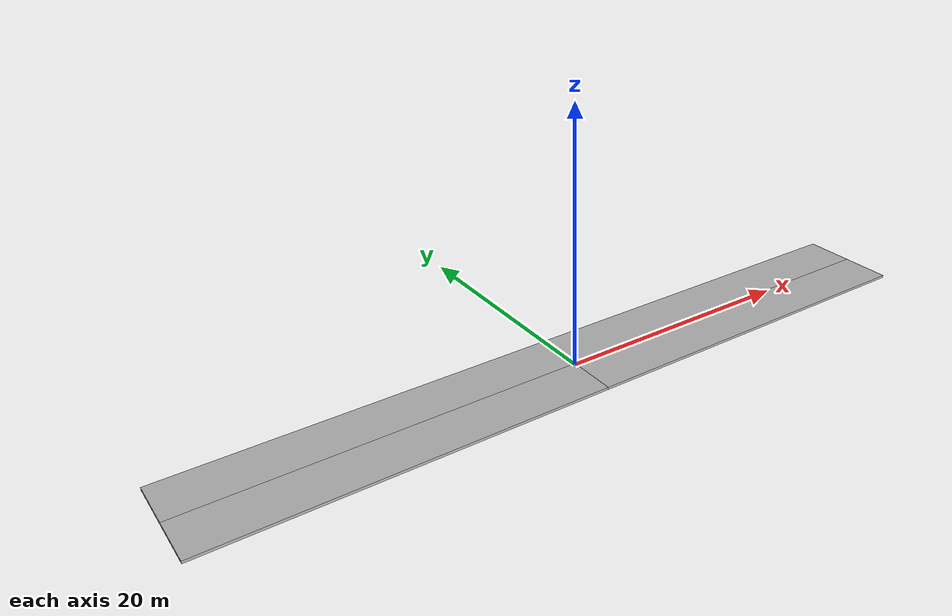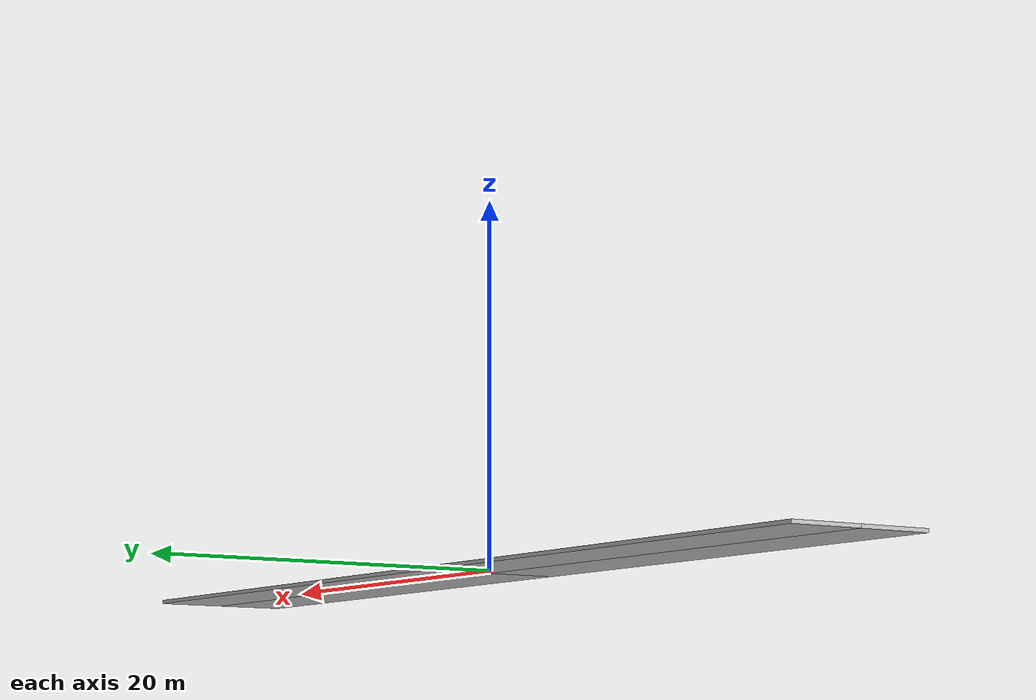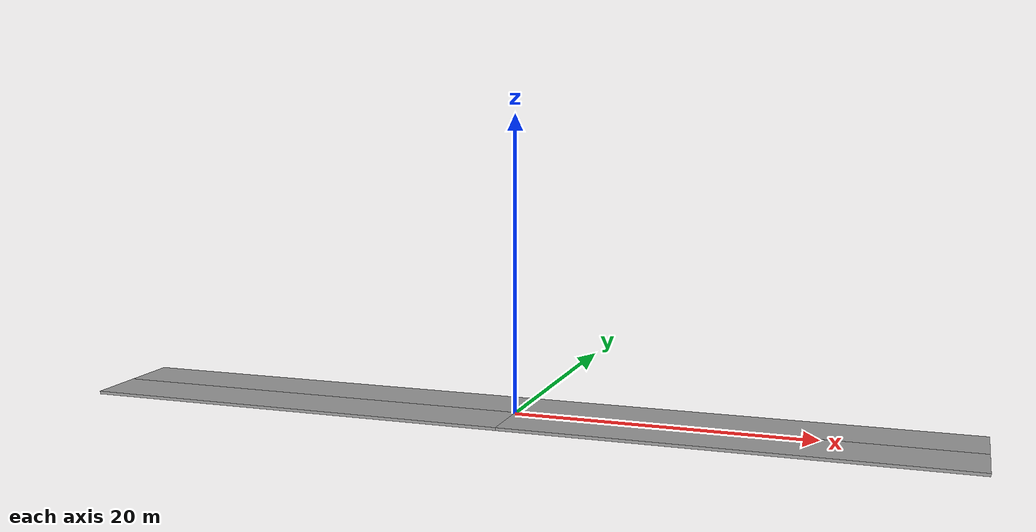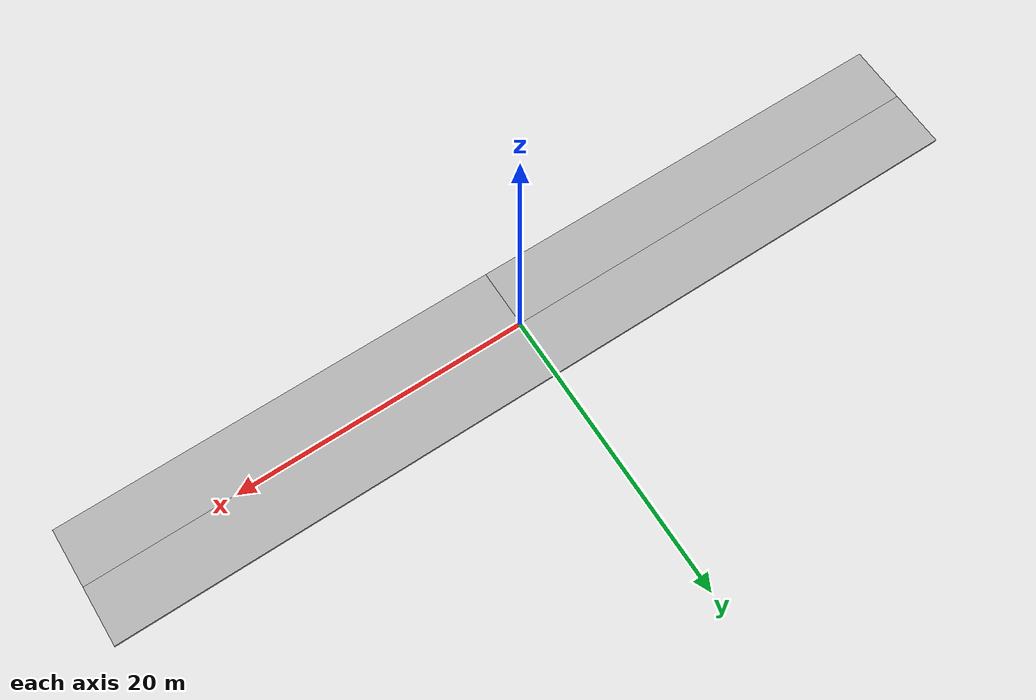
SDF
<?xml version="1.0" ?>
<sdf version="1.5">
  <model name="acera">
    <static>true</static>
    <link name="link">
      <collision name="collision">
        <geometry>
          <box>
            <size>60 8 0.2</size>
          </box>
        </geometry>
      </collision>
      <visual name="visual_1">
        <pose>-15 2 0 0 0 0</pose>
        <cast_shadows>false</cast_shadows>
        <geometry>
          <box>
            <size>30 4 0.2</size>
        </box>
      </geometry>
        <material>
          <script>
            <uri>model://acera/materials/scripts</uri>
            <uri>model://acera/materials/textures</uri>
            <name>vrc/acera</name>
        </script>
      </material>
    </visual>
    <visual name="visual_2">
        <pose>15 2 0 0 0 0</pose>
        <cast_shadows>false</cast_shadows>
        <geometry>
          <box>
            <size>30 4 0.2</size>
        </box>
      </geometry>
        <material>
          <script>
            <uri>model://acera/materials/scripts</uri>
            <uri>model://acera/materials/textures</uri>
            <name>vrc/acera</name>
        </script>
      </material>
    </visual>
    <visual name="visual_3">
        <pose>15 -2 0 0 0 0</pose>
        <cast_shadows>false</cast_shadows>
        <geometry>
          <box>
            <size>30 4 0.2</size>
        </box>
      </geometry>
        <material>
          <script>
            <uri>model://acera/materials/scripts</uri>
            <uri>model://acera/materials/textures</uri>
            <name>vrc/acera</name>
        </script>
      </material>
    </visual>
      <visual name="visual_4">
        <pose>-15 -2 0 0 0 0</pose>
        <cast_shadows>false</cast_shadows>
        <geometry>
          <box>
            <size>30 4 0.2</size>
        </box>
      </geometry>
        <material>
          <script>
            <uri>model://acera/materials/scripts</uri>
            <uri>model://acera/materials/textures</uri>
            <name>vrc/acera</name>
        </script>
      </material>
    </visual>
  </link>
</model>
</sdf>
